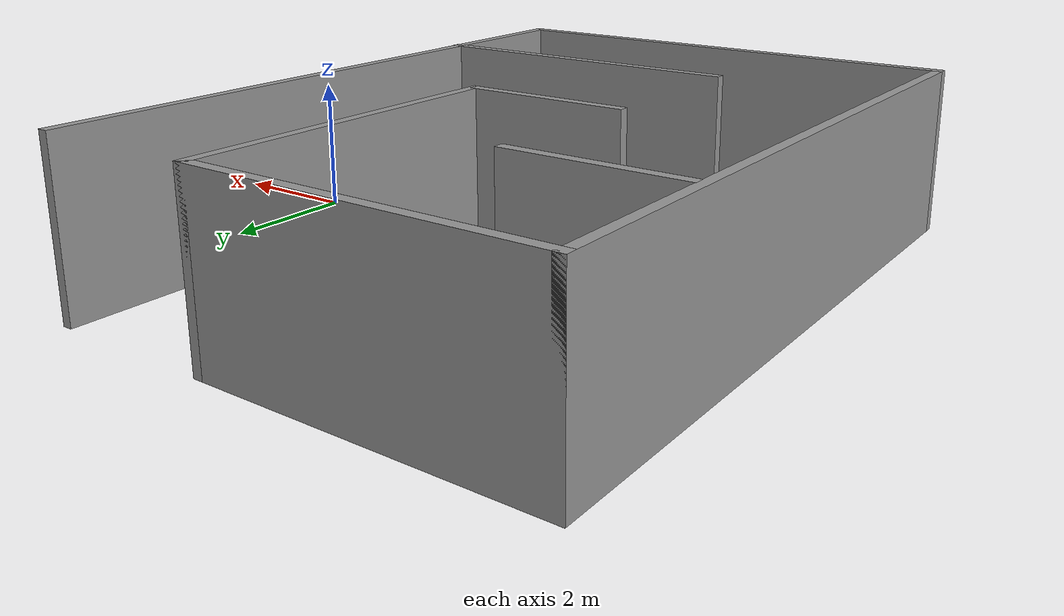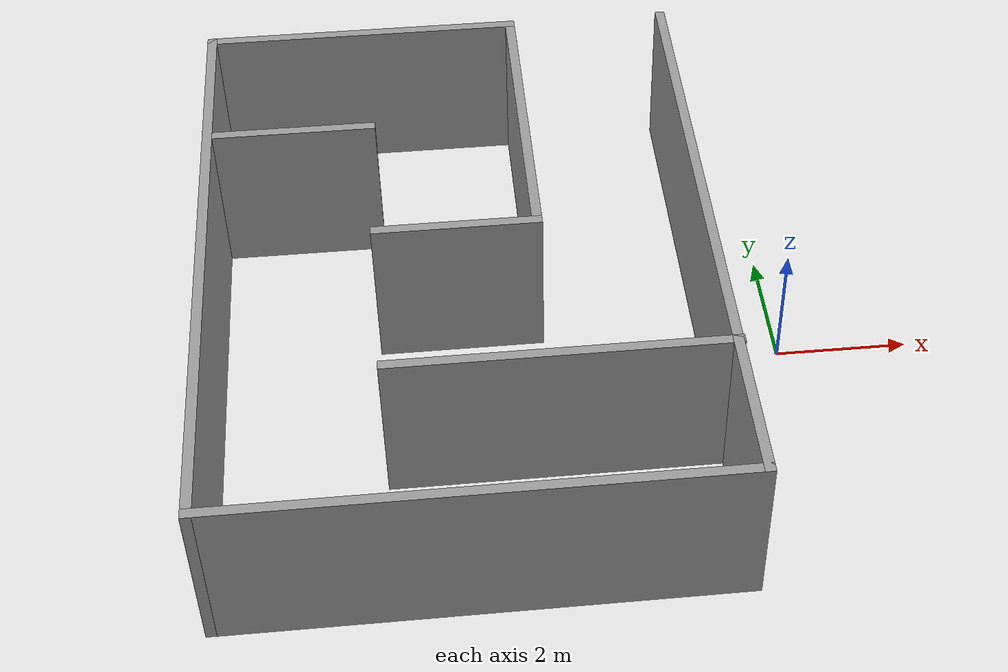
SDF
<?xml version='1.0'?>
<sdf version='1.7'>
  <model name='maze2'>
    <pose>-4.2725 0.615 0 0 -0 0</pose>
    <link name='Wall_0'>
      <collision name='Wall_0_Collision'>
        <geometry>
          <box>
            <size>7.5 0.15 2.5</size>
          </box>
        </geometry>
        <pose>0 0 1.25 0 -0 0</pose>
      </collision>
      <visual name='Wall_0_Visual'>
        <pose>0 0 1.25 0 -0 0</pose>
        <geometry>
          <box>
            <size>7.5 0.15 2.5</size>
          </box>
        </geometry>
        <material>
          <script>
            <uri>file://media/materials/scripts/gazebo.material</uri>
            <name>Gazebo/Grey</name>
          </script>
          <ambient>1 1 1 1</ambient>
        </material>
        <meta>
          <layer>0</layer>
        </meta>
      </visual>
      <pose>-0.5225 -4.925 0 0 -0 3.14159</pose>
    </link>
    <link name='Wall_1'>
      <collision name='Wall_1_Collision'>
        <geometry>
          <box>
            <size>10 0.15 2.5</size>
          </box>
        </geometry>
        <pose>0 0 1.25 0 -0 0</pose>
      </collision>
      <visual name='Wall_1_Visual'>
        <pose>0 0 1.25 0 -0 0</pose>
        <geometry>
          <box>
            <size>10 0.15 2.5</size>
          </box>
        </geometry>
        <material>
          <script>
            <uri>file://media/materials/scripts/gazebo.material</uri>
            <name>Gazebo/Grey</name>
          </script>
          <ambient>1 1 1 1</ambient>
        </material>
        <meta>
          <layer>0</layer>
        </meta>
      </visual>
      <pose>-4.1975 -0 0 0 -0 1.5708</pose>
    </link>
    <link name='Wall_11'>
      <collision name='Wall_11_Collision'>
        <geometry>
          <box>
            <size>2.5 0.15 2.5</size>
          </box>
        </geometry>
        <pose>0 0 1.25 0 -0 0</pose>
      </collision>
      <visual name='Wall_11_Visual'>
        <pose>0 0 1.25 0 -0 0</pose>
        <geometry>
          <box>
            <size>2.5 0.15 2.5</size>
          </box>
        </geometry>
        <material>
          <script>
            <uri>file://media/materials/scripts/gazebo.material</uri>
            <name>Gazebo/Grey</name>
          </script>
          <ambient>1 1 1 1</ambient>
        </material>
        <meta>
          <layer>0</layer>
        </meta>
      </visual>
      <pose>-2.88212 2.49193 0 0 -0 3.14159</pose>
    </link>
    <link name='Wall_13'>
      <collision name='Wall_13_Collision'>
        <geometry>
          <box>
            <size>5 0.15 2.5</size>
          </box>
        </geometry>
        <pose>0 0 1.25 0 -0 0</pose>
      </collision>
      <visual name='Wall_13_Visual'>
        <pose>0 0 1.25 0 -0 0</pose>
        <geometry>
          <box>
            <size>5 0.15 2.5</size>
          </box>
        </geometry>
        <material>
          <script>
            <uri>file://media/materials/scripts/gazebo.material</uri>
            <name>Gazebo/Grey</name>
          </script>
          <ambient>1 1 1 1</ambient>
        </material>
        <meta>
          <layer>0</layer>
        </meta>
      </visual>
      <pose>0.747471 -2.62683 0 0 -0 0</pose>
    </link>
    <link name='Wall_3'>
      <collision name='Wall_3_Collision'>
        <geometry>
          <box>
            <size>5 0.15 2.5</size>
          </box>
        </geometry>
        <pose>0 0 1.25 0 -0 0</pose>
      </collision>
      <visual name='Wall_3_Visual'>
        <pose>0 0 1.25 0 -0 0</pose>
        <geometry>
          <box>
            <size>5 0.15 2.5</size>
          </box>
        </geometry>
        <material>
          <script>
            <uri>file://media/materials/scripts/gazebo.material</uri>
            <name>Gazebo/Grey</name>
          </script>
          <ambient>1 1 1 1</ambient>
        </material>
        <meta>
          <layer>0</layer>
        </meta>
      </visual>
      <pose>-1.7725 4.925 0 0 -0 0</pose>
    </link>
    <link name='Wall_4'>
      <collision name='Wall_4_Collision'>
        <geometry>
          <box>
            <size>5 0.15 2.5</size>
          </box>
        </geometry>
        <pose>0 0 1.25 0 -0 0</pose>
      </collision>
      <visual name='Wall_4_Visual'>
        <pose>0 0 1.25 0 -0 0</pose>
        <geometry>
          <box>
            <size>5 0.15 2.5</size>
          </box>
        </geometry>
        <material>
          <script>
            <uri>file://media/materials/scripts/gazebo.material</uri>
            <name>Gazebo/Grey</name>
          </script>
          <ambient>1 1 1 1</ambient>
        </material>
        <meta>
          <layer>0</layer>
        </meta>
      </visual>
      <pose>0.652501 2.5 0 0 -0 -1.5708</pose>
    </link>
    <link name='Wall_5'>
      <collision name='Wall_5_Collision'>
        <geometry>
          <box>
            <size>2.5 0.15 2.5</size>
          </box>
        </geometry>
        <pose>0 0 1.25 0 -0 0</pose>
      </collision>
      <visual name='Wall_5_Visual'>
        <pose>0 0 1.25 0 -0 0</pose>
        <geometry>
          <box>
            <size>2.5 0.15 2.5</size>
          </box>
        </geometry>
        <material>
          <script>
            <uri>file://media/materials/scripts/gazebo.material</uri>
            <name>Gazebo/Grey</name>
          </script>
          <ambient>1 1 1 1</ambient>
        </material>
        <meta>
          <layer>0</layer>
        </meta>
      </visual>
      <pose>-0.5225 0.075 0 0 -0 3.14159</pose>
    </link>
    <link name='Wall_7'>
      <collision name='Wall_7_Collision'>
        <geometry>
          <box>
            <size>10 0.15 2.5</size>
          </box>
        </geometry>
        <pose>0 0 1.25 0 -0 0</pose>
      </collision>
      <visual name='Wall_7_Visual'>
        <pose>0 0 1.25 0 -0 0</pose>
        <geometry>
          <box>
            <size>10 0.15 2.5</size>
          </box>
        </geometry>
        <material>
          <script>
            <uri>file://media/materials/scripts/gazebo.material</uri>
            <name>Gazebo/Grey</name>
          </script>
          <ambient>1 1 1 1</ambient>
        </material>
        <meta>
          <layer>0</layer>
        </meta>
      </visual>
      <pose>3.1525 -0 0 0 -0 1.5708</pose>
    </link>
    <static>1</static>
  </model>
</sdf>
